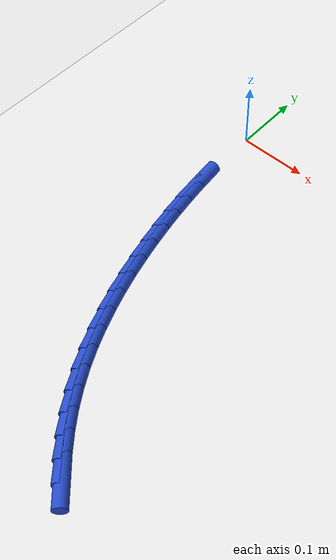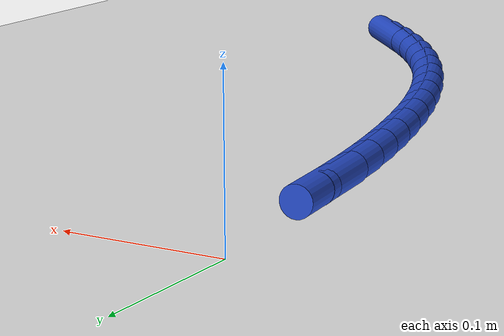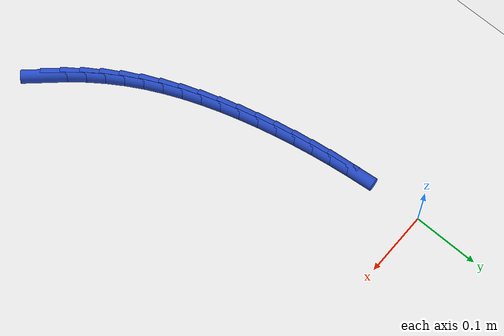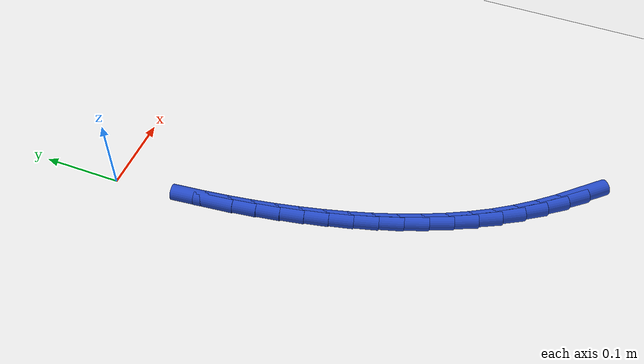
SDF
<sdf version="1.6">
 <world name="default">
  <model name="ground_plane">
   <static>1</static>
   <link name="link">
    <collision name="collision">
     <geometry><plane><normal>0 0 1</normal><size>100 100</size></plane></geometry>
     <surface><friction><ode><mu>100</mu><mu2>50</mu2></ode></friction></surface>
    </collision>
    <visual name="visual">
     <cast_shadows>0</cast_shadows>
     <geometry><plane><normal>0 0 1</normal><size>100 100</size></plane></geometry>
     <material>
      <script><uri>file://media/materials/scripts/gazebo.material</uri><name>Gazebo/WhiteGlow</name></script>
     </material>
    </visual>
   </link>
  </model>
  <model name="line">
   <link name="link_250">
    <pose>0.1812638406684024 -0.5470495032988035 0.01 0 1.57 -0.8271268439508102</pose>
    <collision name="collision">
     <geometry><cylinder><radius>0.01</radius><length>0.08</length></cylinder></geometry>
    </collision>
    <visual name="visual">
     <material>
      <script><name>Gazebo/Blue</name><uri>file://media/materials/scripts/gazebo.material</uri></script>
     </material>
     <geometry><cylinder><radius>0.01</radius><length>0.08</length></cylinder></geometry>
    </visual>
   </link>
   <link name="link_251">
    <pose>0.16187175879222016 -0.5259675107140586 0.01 0 1.57 -0.8812571493421725</pose>
    <collision name="collision">
     <geometry><cylinder><radius>0.01</radius><length>0.08</length></cylinder></geometry>
    </collision>
    <visual name="visual">
     <material>
      <script><name>Gazebo/Blue</name><uri>file://media/materials/scripts/gazebo.material</uri></script>
     </material>
     <geometry><cylinder><radius>0.01</radius><length>0.08</length></cylinder></geometry>
    </visual>
   </link>
   <link name="link_252">
    <pose>0.14372152460124724 -0.5039555317951157 0.01 0 1.57 -0.9372760810587908</pose>
    <collision name="collision">
     <geometry><cylinder><radius>0.01</radius><length>0.08</length></cylinder></geometry>
    </collision>
    <visual name="visual">
     <material>
      <script><name>Gazebo/Blue</name><uri>file://media/materials/scripts/gazebo.material</uri></script>
     </material>
     <geometry><cylinder><radius>0.01</radius><length>0.08</length></cylinder></geometry>
    </visual>
   </link>
   <link name="link_253">
    <pose>0.12682747454096385 -0.48095541742881065 0.01 0 1.57 -0.9946149509419281</pose>
    <collision name="collision">
     <geometry><cylinder><radius>0.01</radius><length>0.08</length></cylinder></geometry>
    </collision>
    <visual name="visual">
     <material>
      <script><name>Gazebo/Blue</name><uri>file://media/materials/scripts/gazebo.material</uri></script>
     </material>
     <geometry><cylinder><radius>0.01</radius><length>0.08</length></cylinder></geometry>
    </visual>
   </link>
   <link name="link_254">
    <pose>0.11120394505685219 -0.4569090185019821 0.01 0 1.57 -1.0523533974756276</pose>
    <collision name="collision">
     <geometry><cylinder><radius>0.01</radius><length>0.08</length></cylinder></geometry>
    </collision>
    <visual name="visual">
     <material>
      <script><name>Gazebo/Blue</name><uri>file://media/materials/scripts/gazebo.material</uri></script>
     </material>
     <geometry><cylinder><radius>0.01</radius><length>0.08</length></cylinder></geometry>
    </visual>
   </link>
   <link name="link_255">
    <pose>0.09686145114583704 -0.4317686316284558 0.01 0 1.57 -1.1067570789042218</pose>
    <collision name="collision">
     <geometry><cylinder><radius>0.01</radius><length>0.08</length></cylinder></geometry>
    </collision>
    <visual name="visual">
     <material>
      <script><name>Gazebo/Blue</name><uri>file://media/materials/scripts/gazebo.material</uri></script>
     </material>
     <geometry><cylinder><radius>0.01</radius><length>0.08</length></cylinder></geometry>
    </visual>
   </link>
   <link name="link_256">
    <pose>0.08376702725327032 -0.40560540520417343 0.01 0 1.57 -1.1559928706956075</pose>
    <collision name="collision">
     <geometry><cylinder><radius>0.01</radius><length>0.08</length></cylinder></geometry>
    </collision>
    <visual name="visual">
     <material>
      <script><name>Gazebo/Blue</name><uri>file://media/materials/scripts/gazebo.material</uri></script>
     </material>
     <geometry><cylinder><radius>0.01</radius><length>0.08</length></cylinder></geometry>
    </visual>
   </link>
   <link name="link_257">
    <pose>0.0718600975956069 -0.3785659587216916 0.01 0 1.57 -1.2004730382388256</pose>
    <collision name="collision">
     <geometry><cylinder><radius>0.01</radius><length>0.08</length></cylinder></geometry>
    </collision>
    <visual name="visual">
     <material>
      <script><name>Gazebo/Blue</name><uri>file://media/materials/scripts/gazebo.material</uri></script>
     </material>
     <geometry><cylinder><radius>0.01</radius><length>0.08</length></cylinder></geometry>
    </visual>
   </link>
   <link name="link_258">
    <pose>0.06107964566417667 -0.35079811637232633 0.01 0 1.57 -1.2406399323952007</pose>
    <collision name="collision">
     <geometry><cylinder><radius>0.01</radius><length>0.08</length></cylinder></geometry>
    </collision>
    <visual name="visual">
     <material>
      <script><name>Gazebo/Blue</name><uri>file://media/materials/scripts/gazebo.material</uri></script>
     </material>
     <geometry><cylinder><radius>0.01</radius><length>0.08</length></cylinder></geometry>
    </visual>
   </link>
   <link name="link_259">
    <pose>0.051364654950310444 -0.3224497023473962 0.01 0 1.57 -1.2769124248113966</pose>
    <collision name="collision">
     <geometry><cylinder><radius>0.01</radius><length>0.08</length></cylinder></geometry>
    </collision>
    <visual name="visual">
     <material>
      <script><name>Gazebo/Blue</name><uri>file://media/materials/scripts/gazebo.material</uri></script>
     </material>
     <geometry><cylinder><radius>0.01</radius><length>0.08</length></cylinder></geometry>
    </visual>
   </link>
   <link name="link_260">
    <pose>0.042654108945337804 -0.29366854083821636 0.01 0 1.57 -1.3096748840171184</pose>
    <collision name="collision">
     <geometry><cylinder><radius>0.01</radius><length>0.08</length></cylinder></geometry>
    </collision>
    <visual name="visual">
     <material>
      <script><name>Gazebo/Blue</name><uri>file://media/materials/scripts/gazebo.material</uri></script>
     </material>
     <geometry><cylinder><radius>0.01</radius><length>0.08</length></cylinder></geometry>
    </visual>
   </link>
   <link name="link_261">
    <pose>0.03488699114058946 -0.2646024560361054 0.01 0 1.57 -1.3392719356437615</pose>
    <collision name="collision">
     <geometry><cylinder><radius>0.01</radius><length>0.08</length></cylinder></geometry>
    </collision>
    <visual name="visual">
     <material>
      <script><name>Gazebo/Blue</name><uri>file://media/materials/scripts/gazebo.material</uri></script>
     </material>
     <geometry><cylinder><radius>0.01</radius><length>0.08</length></cylinder></geometry>
    </visual>
   </link>
   <link name="link_262">
    <pose>0.02800228502739511 -0.23539927213237832 0.01 0 1.57 -1.366232504636042</pose>
    <collision name="collision">
     <geometry><cylinder><radius>0.01</radius><length>0.08</length></cylinder></geometry>
    </collision>
    <visual name="visual">
     <material>
      <script><name>Gazebo/Blue</name><uri>file://media/materials/scripts/gazebo.material</uri></script>
     </material>
     <geometry><cylinder><radius>0.01</radius><length>0.08</length></cylinder></geometry>
    </visual>
   </link>
   <link name="link_263">
    <pose>0.02194217150773229 -0.2061890947611023 0.01 0 1.57 -1.3921859088375905</pose>
    <collision name="collision">
     <geometry><cylinder><radius>0.01</radius><length>0.08</length></cylinder></geometry>
    </collision>
    <visual name="visual">
     <material>
      <script><name>Gazebo/Blue</name><uri>file://media/materials/scripts/gazebo.material</uri></script>
     </material>
     <geometry><cylinder><radius>0.01</radius><length>0.08</length></cylinder></geometry>
    </visual>
   </link>
   <link name="link_264">
    <pose>0.01666989047838515 -0.17698533043747414 0.01 0 1.57 -1.4176260376698495</pose>
    <collision name="collision">
     <geometry><cylinder><radius>0.01</radius><length>0.08</length></cylinder></geometry>
    </collision>
    <visual name="visual">
     <material>
      <script><name>Gazebo/Blue</name><uri>file://media/materials/scripts/gazebo.material</uri></script>
     </material>
     <geometry><cylinder><radius>0.01</radius><length>0.08</length></cylinder></geometry>
    </visual>
   </link>
   <link name="link_265">
    <pose>0.012157200405846084 -0.1477541797398498 0.01 0 1.57 -1.44241792177473</pose>
    <collision name="collision">
     <geometry><cylinder><radius>0.01</radius><length>0.08</length></cylinder></geometry>
    </collision>
    <visual name="visual">
     <material>
      <script><name>Gazebo/Blue</name><uri>file://media/materials/scripts/gazebo.material</uri></script>
     </material>
     <geometry><cylinder><radius>0.01</radius><length>0.08</length></cylinder></geometry>
    </visual>
   </link>
   <link name="link_266">
    <pose>0.00837588373596426 -0.11846171036417706 0.01 0 1.57 -1.4664337782302788</pose>
    <collision name="collision">
     <geometry><cylinder><radius>0.01</radius><length>0.08</length></cylinder></geometry>
    </collision>
    <visual name="visual">
     <material>
      <script><name>Gazebo/Blue</name><uri>file://media/materials/scripts/gazebo.material</uri></script>
     </material>
     <geometry><cylinder><radius>0.01</radius><length>0.08</length></cylinder></geometry>
    </visual>
   </link>
  </model>
 </world>
</sdf>
